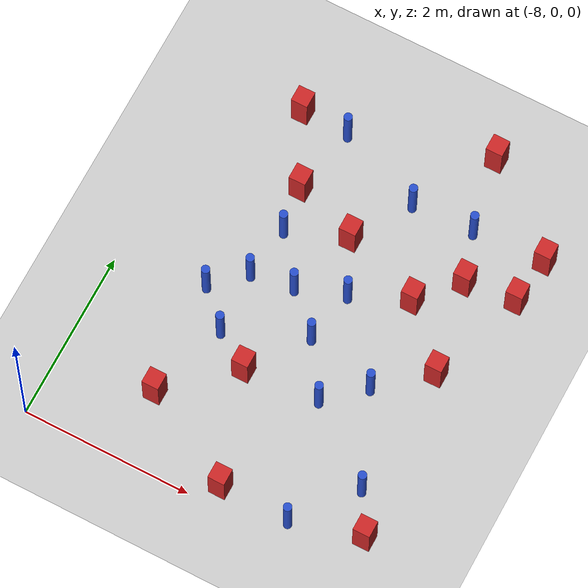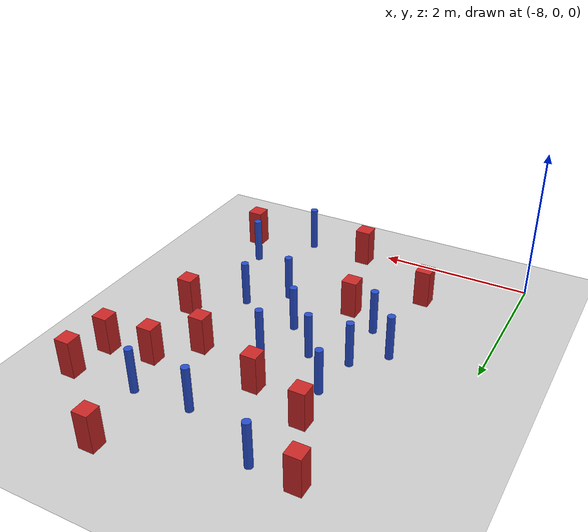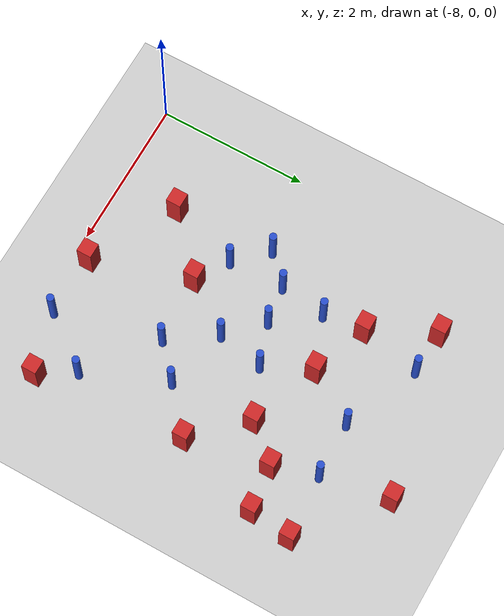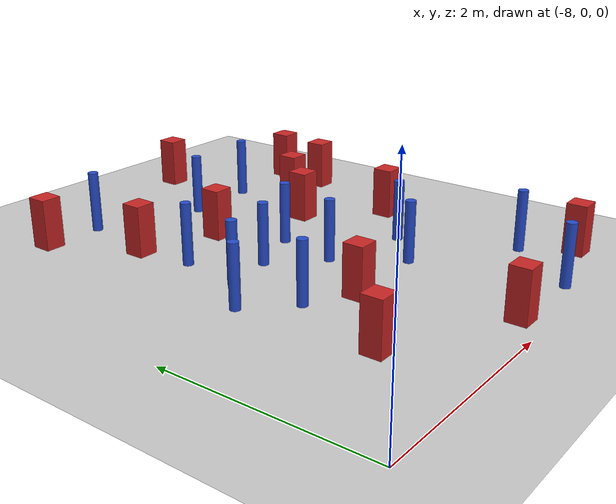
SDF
<sdf version="1.6">
 <world name="default">
  <model name="ground_plane">
   <static>1</static>
   <link name="link">
    <collision name="collision">
     <geometry><plane><normal>0 0 1</normal><size>100 100</size></plane></geometry>
     <surface><friction><ode><mu>100</mu><mu2>50</mu2></ode></friction></surface>
    </collision>
    <visual name="visual">
     <cast_shadows>0</cast_shadows>
     <geometry><plane><normal>0 0 1</normal><size>100 100</size></plane></geometry>
     <material>
      <ambient>1.0 1.0 1.0 1.0</ambient>
      <diffuse>0.8 0.8 0.8 1.0</diffuse>
      <specular>0.01 0.01 0.01 1.000000</specular>
     </material>
    </visual>
   </link>
  </model>
  <model name="square_post_obstacle0">
   <static>true</static>
   <pose>-3.86595991836 3.60557154821 1.91545236811e-07 -7.35059704564e-06 1.12565212e-07 2.39332434364e-05</pose>
   <link name="link">
    <pose>0 0 0.25 0 -0 0</pose>
    <inertial>
     <mass>100</mass>
     <inertia>
      <ixx>0.166667</ixx>
      <ixy>0</ixy>
      <ixz>0</ixz>
      <iyy>0.166667</iyy>
      <iyz>0</iyz>
      <izz>0.166667</izz>
     </inertia>
    </inertial>
    <collision name="collision"><geometry><box><size>.2 .2 .5</size></box></geometry></collision>
    <visual name="visual">
     <geometry><box><size>.2 .2 .5</size></box></geometry>
     <material>
      <script><name>Gazebo/Red</name><uri>file://media/materials/scripts/gazebo.material</uri></script>
     </material>
    </visual>
   </link>
  </model>
  <model name="pole_obstacle21">
   <static>true</static>
   <pose>-6.55348744013 1.78004425009 7.38925637345e-09 -8.471706928e-08 1.24976765134e-08 -1.74513093015e-07</pose>
   <link name="link">
    <pose>0 0 0.3 0 -0 0</pose>
    <inertial>
     <mass>1</mass>
     <inertia><ixx>0.145833</ixx><ixy>0</ixy><ixz>0</ixz><iyy>0.145833</iyy><iyz>0</iyz><izz>0.125</izz></inertia>
    </inertial>
    <collision name="collision">
     <geometry><cylinder><radius>0.05</radius><length>.6</length></cylinder></geometry>
    </collision>
    <visual name="visual">
     <geometry><cylinder><radius>0.05</radius><length>.6</length></cylinder></geometry>
     <material>
      <script><name>Gazebo/Blue</name><uri>file://media/materials/scripts/gazebo.material</uri></script>
     </material>
    </visual>
   </link>
  </model>
  <model name="square_post_obstacle40">
   <static>true</static>
   <pose>-6.85556319978 0.843686910048 1.91545236811e-07 -7.35059704564e-06 1.12565212e-07 2.39332434364e-05</pose>
   <link name="link">
    <pose>0 0 0.25 0 -0 0</pose>
    <inertial>
     <mass>100</mass>
     <inertia>
      <ixx>0.166667</ixx>
      <ixy>0</ixy>
      <ixz>0</ixz>
      <iyy>0.166667</iyy>
      <iyz>0</iyz>
      <izz>0.166667</izz>
     </inertia>
    </inertial>
    <collision name="collision"><geometry><box><size>.2 .2 .5</size></box></geometry></collision>
    <visual name="visual">
     <geometry><box><size>.2 .2 .5</size></box></geometry>
     <material>
      <script><name>Gazebo/Red</name><uri>file://media/materials/scripts/gazebo.material</uri></script>
     </material>
    </visual>
   </link>
  </model>
  <model name="square_post_obstacle45">
   <static>true</static>
   <pose>-5.71500904995 0.223357686886 1.91545236811e-07 -7.35059704564e-06 1.12565212e-07 2.39332434364e-05</pose>
   <link name="link">
    <pose>0 0 0.25 0 -0 0</pose>
    <inertial>
     <mass>100</mass>
     <inertia>
      <ixx>0.166667</ixx>
      <ixy>0</ixy>
      <ixz>0</ixz>
      <iyy>0.166667</iyy>
      <iyz>0</iyz>
      <izz>0.166667</izz>
     </inertia>
    </inertial>
    <collision name="collision"><geometry><box><size>.2 .2 .5</size></box></geometry></collision>
    <visual name="visual">
     <geometry><box><size>.2 .2 .5</size></box></geometry>
     <material>
      <script><name>Gazebo/Red</name><uri>file://media/materials/scripts/gazebo.material</uri></script>
     </material>
    </visual>
   </link>
  </model>
  <model name="pole_obstacle58">
   <static>true</static>
   <pose>-6.50039643059 3.14335249253 7.38925637345e-09 -8.47170692798e-08 1.24976764937e-08 -1.74513093023e-07</pose>
   <link name="link">
    <pose>0 0 0.3 0 -0 0</pose>
    <inertial>
     <mass>1</mass>
     <inertia><ixx>0.145833</ixx><ixy>0</ixy><ixz>0</ixz><iyy>0.145833</iyy><iyz>0</iyz><izz>0.125</izz></inertia>
    </inertial>
    <collision name="collision">
     <geometry><cylinder><radius>0.05</radius><length>.6</length></cylinder></geometry>
    </collision>
    <visual name="visual">
     <geometry><cylinder><radius>0.05</radius><length>.6</length></cylinder></geometry>
     <material>
      <script><name>Gazebo/Blue</name><uri>file://media/materials/scripts/gazebo.material</uri></script>
     </material>
    </visual>
   </link>
  </model>
  <model name="square_post_obstacle71">
   <static>true</static>
   <pose>-4.86969786584 3.07626681974 1.91545236811e-07 -7.35059704564e-06 1.12565212e-07 2.39332434364e-05</pose>
   <link name="link">
    <pose>0 0 0.25 0 -0 0</pose>
    <inertial>
     <mass>100</mass>
     <inertia>
      <ixx>0.166667</ixx>
      <ixy>0</ixy>
      <ixz>0</ixz>
      <iyy>0.166667</iyy>
      <iyz>0</iyz>
      <izz>0.166667</izz>
     </inertia>
    </inertial>
    <collision name="collision"><geometry><box><size>.2 .2 .5</size></box></geometry></collision>
    <visual name="visual">
     <geometry><box><size>.2 .2 .5</size></box></geometry>
     <material>
      <script><name>Gazebo/Red</name><uri>file://media/materials/scripts/gazebo.material</uri></script>
     </material>
    </visual>
   </link>
  </model>
  <model name="pole_obstacle89">
   <static>true</static>
   <pose>-6.07810839489 2.59719397885 7.38925637345e-09 -8.47170692798e-08 1.24976764937e-08 -1.74513093023e-07</pose>
   <link name="link">
    <pose>0 0 0.3 0 -0 0</pose>
    <inertial>
     <mass>1</mass>
     <inertia><ixx>0.145833</ixx><ixy>0</ixy><ixz>0</ixz><iyy>0.145833</iyy><iyz>0</iyz><izz>0.125</izz></inertia>
    </inertial>
    <collision name="collision">
     <geometry><cylinder><radius>0.05</radius><length>.6</length></cylinder></geometry>
    </collision>
    <visual name="visual">
     <geometry><cylinder><radius>0.05</radius><length>.6</length></cylinder></geometry>
     <material>
      <script><name>Gazebo/Blue</name><uri>file://media/materials/scripts/gazebo.material</uri></script>
     </material>
    </visual>
   </link>
  </model>
  <model name="pole_obstacle90">
   <static>true</static>
   <pose>-4.88486015319 0.196753515784 7.38925637345e-09 -8.471706928e-08 1.24976765151e-08 -1.74513093014e-07</pose>
   <link name="link">
    <pose>0 0 0.3 0 -0 0</pose>
    <inertial>
     <mass>1</mass>
     <inertia><ixx>0.145833</ixx><ixy>0</ixy><ixz>0</ixz><iyy>0.145833</iyy><iyz>0</iyz><izz>0.125</izz></inertia>
    </inertial>
    <collision name="collision">
     <geometry><cylinder><radius>0.05</radius><length>.6</length></cylinder></geometry>
    </collision>
    <visual name="visual">
     <geometry><cylinder><radius>0.05</radius><length>.6</length></cylinder></geometry>
     <material>
      <script><name>Gazebo/Blue</name><uri>file://media/materials/scripts/gazebo.material</uri></script>
     </material>
    </visual>
   </link>
  </model>
  <model name="pole_obstacle94">
   <static>true</static>
   <pose>-5.39001507004 4.07851157593 7.38925637345e-09 -8.47170692796e-08 1.24976764786e-08 -1.74513093032e-07</pose>
   <link name="link">
    <pose>0 0 0.3 0 -0 0</pose>
    <inertial>
     <mass>1</mass>
     <inertia><ixx>0.145833</ixx><ixy>0</ixy><ixz>0</ixz><iyy>0.145833</iyy><iyz>0</iyz><izz>0.125</izz></inertia>
    </inertial>
    <collision name="collision">
     <geometry><cylinder><radius>0.05</radius><length>.6</length></cylinder></geometry>
    </collision>
    <visual name="visual">
     <geometry><cylinder><radius>0.05</radius><length>.6</length></cylinder></geometry>
     <material>
      <script><name>Gazebo/Blue</name><uri>file://media/materials/scripts/gazebo.material</uri></script>
     </material>
    </visual>
   </link>
  </model>
  <model name="pole_obstacle107">
   <static>true</static>
   <pose>-4.34851654881 0.886905893965 7.38925637345e-09 -8.47170692799e-08 1.24976765038e-08 -1.74513093018e-07</pose>
   <link name="link">
    <pose>0 0 0.3 0 -0 0</pose>
    <inertial>
     <mass>1</mass>
     <inertia><ixx>0.145833</ixx><ixy>0</ixy><ixz>0</ixz><iyy>0.145833</iyy><iyz>0</iyz><izz>0.125</izz></inertia>
    </inertial>
    <collision name="collision">
     <geometry><cylinder><radius>0.05</radius><length>.6</length></cylinder></geometry>
    </collision>
    <visual name="visual">
     <geometry><cylinder><radius>0.05</radius><length>.6</length></cylinder></geometry>
     <material>
      <script><name>Gazebo/Blue</name><uri>file://media/materials/scripts/gazebo.material</uri></script>
     </material>
    </visual>
   </link>
  </model>
  <model name="pole_obstacle109">
   <static>true</static>
   <pose>-5.23086947961 1.56839969151 7.38925637345e-09 -8.471706928e-08 1.24976765134e-08 -1.74513093015e-07</pose>
   <link name="link">
    <pose>0 0 0.3 0 -0 0</pose>
    <inertial>
     <mass>1</mass>
     <inertia><ixx>0.145833</ixx><ixy>0</ixy><ixz>0</ixz><iyy>0.145833</iyy><iyz>0</iyz><izz>0.125</izz></inertia>
    </inertial>
    <collision name="collision">
     <geometry><cylinder><radius>0.05</radius><length>.6</length></cylinder></geometry>
    </collision>
    <visual name="visual">
     <geometry><cylinder><radius>0.05</radius><length>.6</length></cylinder></geometry>
     <material>
      <script><name>Gazebo/Blue</name><uri>file://media/materials/scripts/gazebo.material</uri></script>
     </material>
    </visual>
   </link>
  </model>
  <model name="pole_obstacle124">
   <static>true</static>
   <pose>-5.64075008194 2.17287120768 7.38925637345e-09 -8.47170692798e-08 1.24976764937e-08 -1.74513093023e-07</pose>
   <link name="link">
    <pose>0 0 0.3 0 -0 0</pose>
    <inertial>
     <mass>1</mass>
     <inertia><ixx>0.145833</ixx><ixy>0</ixy><ixz>0</ixz><iyy>0.145833</iyy><iyz>0</iyz><izz>0.125</izz></inertia>
    </inertial>
    <collision name="collision">
     <geometry><cylinder><radius>0.05</radius><length>.6</length></cylinder></geometry>
    </collision>
    <visual name="visual">
     <geometry><cylinder><radius>0.05</radius><length>.6</length></cylinder></geometry>
     <material>
      <script><name>Gazebo/Blue</name><uri>file://media/materials/scripts/gazebo.material</uri></script>
     </material>
    </visual>
   </link>
  </model>
  <model name="pole_obstacle127">
   <static>true</static>
   <pose>-5.52030269205 2.79116916985 7.38925637345e-09 -8.47170692798e-08 1.24976764937e-08 -1.74513093023e-07</pose>
   <link name="link">
    <pose>0 0 0.3 0 -0 0</pose>
    <inertial>
     <mass>1</mass>
     <inertia><ixx>0.145833</ixx><ixy>0</ixy><ixz>0</ixz><iyy>0.145833</iyy><iyz>0</iyz><izz>0.125</izz></inertia>
    </inertial>
    <collision name="collision">
     <geometry><cylinder><radius>0.05</radius><length>.6</length></cylinder></geometry>
    </collision>
    <visual name="visual">
     <geometry><cylinder><radius>0.05</radius><length>.6</length></cylinder></geometry>
     <material>
      <script><name>Gazebo/Blue</name><uri>file://media/materials/scripts/gazebo.material</uri></script>
     </material>
    </visual>
   </link>
  </model>
  <model name="square_post_obstacle118">
   <static>true</static>
   <pose>-4.82078689809 5.00561105637 1.91545236811e-07 -7.35059704564e-06 1.12565212e-07 2.39332434364e-05</pose>
   <link name="link">
    <pose>0 0 0.25 0 -0 0</pose>
    <inertial>
     <mass>100</mass>
     <inertia>
      <ixx>0.166667</ixx>
      <ixy>0</ixy>
      <ixz>0</ixz>
      <iyy>0.166667</iyy>
      <iyz>0</iyz>
      <izz>0.166667</izz>
     </inertia>
    </inertial>
    <collision name="collision"><geometry><box><size>.2 .2 .5</size></box></geometry></collision>
    <visual name="visual">
     <geometry><box><size>.2 .2 .5</size></box></geometry>
     <material>
      <script><name>Gazebo/Red</name><uri>file://media/materials/scripts/gazebo.material</uri></script>
     </material>
    </visual>
   </link>
  </model>
  <model name="square_post_obstacle119">
   <static>true</static>
   <pose>-3.80180215612 4.16481056923 1.91545236811e-07 -7.35059704564e-06 1.12565212e-07 2.39332434364e-05</pose>
   <link name="link">
    <pose>0 0 0.25 0 -0 0</pose>
    <inertial>
     <mass>100</mass>
     <inertia>
      <ixx>0.166667</ixx>
      <ixy>0</ixy>
      <ixz>0</ixz>
      <iyy>0.166667</iyy>
      <iyz>0</iyz>
      <izz>0.166667</izz>
     </inertia>
    </inertial>
    <collision name="collision"><geometry><box><size>.2 .2 .5</size></box></geometry></collision>
    <visual name="visual">
     <geometry><box><size>.2 .2 .5</size></box></geometry>
     <material>
      <script><name>Gazebo/Red</name><uri>file://media/materials/scripts/gazebo.material</uri></script>
     </material>
    </visual>
   </link>
  </model>
  <model name="square_post_obstacle120">
   <static>true</static>
   <pose>-4.46540278607 3.53071237787 1.91545236811e-07 -7.35059704564e-06 1.12565212e-07 2.39332434364e-05</pose>
   <link name="link">
    <pose>0 0 0.25 0 -0 0</pose>
    <inertial>
     <mass>100</mass>
     <inertia>
      <ixx>0.166667</ixx>
      <ixy>0</ixy>
      <ixz>0</ixz>
      <iyy>0.166667</iyy>
      <iyz>0</iyz>
      <izz>0.166667</izz>
     </inertia>
    </inertial>
    <collision name="collision"><geometry><box><size>.2 .2 .5</size></box></geometry></collision>
    <visual name="visual">
     <geometry><box><size>.2 .2 .5</size></box></geometry>
     <material>
      <script><name>Gazebo/Red</name><uri>file://media/materials/scripts/gazebo.material</uri></script>
     </material>
    </visual>
   </link>
  </model>
  <model name="pole_obstacle146">
   <static>true</static>
   <pose>-4.80376832508 1.95586070441 7.38925637345e-09 -8.471706928e-08 1.24976765177e-08 -1.74513093012e-07</pose>
   <link name="link">
    <pose>0 0 0.3 0 -0 0</pose>
    <inertial>
     <mass>1</mass>
     <inertia><ixx>0.145833</ixx><ixy>0</ixy><ixz>0</ixz><iyy>0.145833</iyy><iyz>0</iyz><izz>0.125</izz></inertia>
    </inertial>
    <collision name="collision">
     <geometry><cylinder><radius>0.05</radius><length>.6</length></cylinder></geometry>
    </collision>
    <visual name="visual">
     <geometry><cylinder><radius>0.05</radius><length>.6</length></cylinder></geometry>
     <material>
      <script><name>Gazebo/Blue</name><uri>file://media/materials/scripts/gazebo.material</uri></script>
     </material>
    </visual>
   </link>
  </model>
  <model name="pole_obstacle156">
   <static>true</static>
   <pose>-6.41359265644 4.494106197 7.38925637345e-09 -8.47170692796e-08 1.24976764786e-08 -1.74513093032e-07</pose>
   <link name="link">
    <pose>0 0 0.3 0 -0 0</pose>
    <inertial>
     <mass>1</mass>
     <inertia><ixx>0.145833</ixx><ixy>0</ixy><ixz>0</ixz><iyy>0.145833</iyy><iyz>0</iyz><izz>0.125</izz></inertia>
    </inertial>
    <collision name="collision">
     <geometry><cylinder><radius>0.05</radius><length>.6</length></cylinder></geometry>
    </collision>
    <visual name="visual">
     <geometry><cylinder><radius>0.05</radius><length>.6</length></cylinder></geometry>
     <material>
      <script><name>Gazebo/Blue</name><uri>file://media/materials/scripts/gazebo.material</uri></script>
     </material>
    </visual>
   </link>
  </model>
  <model name="square_post_obstacle156">
   <static>true</static>
   <pose>-6.12395830026 1.5156468879 1.91545236811e-07 -7.35059704564e-06 1.12565212e-07 2.39332434364e-05</pose>
   <link name="link">
    <pose>0 0 0.25 0 -0 0</pose>
    <inertial>
     <mass>100</mass>
     <inertia>
      <ixx>0.166667</ixx>
      <ixy>0</ixy>
      <ixz>0</ixz>
      <iyy>0.166667</iyy>
      <iyz>0</iyz>
      <izz>0.166667</izz>
     </inertia>
    </inertial>
    <collision name="collision"><geometry><box><size>.2 .2 .5</size></box></geometry></collision>
    <visual name="visual">
     <geometry><box><size>.2 .2 .5</size></box></geometry>
     <material>
      <script><name>Gazebo/Red</name><uri>file://media/materials/scripts/gazebo.material</uri></script>
     </material>
    </visual>
   </link>
  </model>
  <model name="square_post_obstacle157">
   <static>true</static>
   <pose>-6.57234840411 3.68802549817 1.91545236811e-07 -7.35059704564e-06 1.12565212e-07 2.39332434364e-05</pose>
   <link name="link">
    <pose>0 0 0.25 0 -0 0</pose>
    <inertial>
     <mass>100</mass>
     <inertia>
      <ixx>0.166667</ixx>
      <ixy>0</ixy>
      <ixz>0</ixz>
      <iyy>0.166667</iyy>
      <iyz>0</iyz>
      <izz>0.166667</izz>
     </inertia>
    </inertial>
    <collision name="collision"><geometry><box><size>.2 .2 .5</size></box></geometry></collision>
    <visual name="visual">
     <geometry><box><size>.2 .2 .5</size></box></geometry>
     <material>
      <script><name>Gazebo/Red</name><uri>file://media/materials/scripts/gazebo.material</uri></script>
     </material>
    </visual>
   </link>
  </model>
  <model name="square_post_obstacle159">
   <static>true</static>
   <pose>-4.07350914103 0.431229910862 1.91545236811e-07 -7.35059704564e-06 1.12565212e-07 2.39332434364e-05</pose>
   <link name="link">
    <pose>0 0 0.25 0 -0 0</pose>
    <inertial>
     <mass>100</mass>
     <inertia>
      <ixx>0.166667</ixx>
      <ixy>0</ixy>
      <ixz>0</ixz>
      <iyy>0.166667</iyy>
      <iyz>0</iyz>
      <izz>0.166667</izz>
     </inertia>
    </inertial>
    <collision name="collision"><geometry><box><size>.2 .2 .5</size></box></geometry></collision>
    <visual name="visual">
     <geometry><box><size>.2 .2 .5</size></box></geometry>
     <material>
      <script><name>Gazebo/Red</name><uri>file://media/materials/scripts/gazebo.material</uri></script>
     </material>
    </visual>
   </link>
  </model>
  <model name="square_post_obstacle164">
   <static>true</static>
   <pose>-6.98697210703 4.5192453092 1.91545236811e-07 -7.35059704564e-06 1.12565212e-07 2.39332434364e-05</pose>
   <link name="link">
    <pose>0 0 0.25 0 -0 0</pose>
    <inertial>
     <mass>100</mass>
     <inertia>
      <ixx>0.166667</ixx>
      <ixy>0</ixy>
      <ixz>0</ixz>
      <iyy>0.166667</iyy>
      <iyz>0</iyz>
      <izz>0.166667</izz>
     </inertia>
    </inertial>
    <collision name="collision"><geometry><box><size>.2 .2 .5</size></box></geometry></collision>
    <visual name="visual">
     <geometry><box><size>.2 .2 .5</size></box></geometry>
     <material>
      <script><name>Gazebo/Red</name><uri>file://media/materials/scripts/gazebo.material</uri></script>
     </material>
    </visual>
   </link>
  </model>
  <model name="square_post_obstacle193">
   <static>true</static>
   <pose>-5.80840645989 3.41423138902 1.91545236811e-07 -7.35059704564e-06 1.12565212e-07 2.39332434364e-05</pose>
   <link name="link">
    <pose>0 0 0.25 0 -0 0</pose>
    <inertial>
     <mass>100</mass>
     <inertia>
      <ixx>0.166667</ixx>
      <ixy>0</ixy>
      <ixz>0</ixz>
      <iyy>0.166667</iyy>
      <iyz>0</iyz>
      <izz>0.166667</izz>
     </inertia>
    </inertial>
    <collision name="collision"><geometry><box><size>.2 .2 .5</size></box></geometry></collision>
    <visual name="visual">
     <geometry><box><size>.2 .2 .5</size></box></geometry>
     <material>
      <script><name>Gazebo/Red</name><uri>file://media/materials/scripts/gazebo.material</uri></script>
     </material>
    </visual>
   </link>
  </model>
  <model name="square_post_obstacle198">
   <static>true</static>
   <pose>-4.25337391084 2.44499710554 1.91545236811e-07 -7.35059704564e-06 1.12565212e-07 2.39332434364e-05</pose>
   <link name="link">
    <pose>0 0 0.25 0 -0 0</pose>
    <inertial>
     <mass>100</mass>
     <inertia>
      <ixx>0.166667</ixx>
      <ixy>0</ixy>
      <ixz>0</ixz>
      <iyy>0.166667</iyy>
      <iyz>0</iyz>
      <izz>0.166667</izz>
     </inertia>
    </inertial>
    <collision name="collision"><geometry><box><size>.2 .2 .5</size></box></geometry></collision>
    <visual name="visual">
     <geometry><box><size>.2 .2 .5</size></box></geometry>
     <material>
      <script><name>Gazebo/Red</name><uri>file://media/materials/scripts/gazebo.material</uri></script>
     </material>
    </visual>
   </link>
  </model>
  <model name="pole_obstacle192">
   <static>true</static>
   <pose>-4.65066480137 4.10591743107 7.38925637345e-09 -8.47170692796e-08 1.24976764786e-08 -1.74513093032e-07</pose>
   <link name="link">
    <pose>0 0 0.3 0 -0 0</pose>
    <inertial>
     <mass>1</mass>
     <inertia><ixx>0.145833</ixx><ixy>0</ixy><ixz>0</ixz><iyy>0.145833</iyy><iyz>0</iyz><izz>0.125</izz></inertia>
    </inertial>
    <collision name="collision">
     <geometry><cylinder><radius>0.05</radius><length>.6</length></cylinder></geometry>
    </collision>
    <visual name="visual">
     <geometry><cylinder><radius>0.05</radius><length>.6</length></cylinder></geometry>
     <material>
      <script><name>Gazebo/Blue</name><uri>file://media/materials/scripts/gazebo.material</uri></script>
     </material>
    </visual>
   </link>
  </model>
  <model name="pole_obstacle205">
   <static>true</static>
   <pose>-6.58068999043 2.52291002078 7.38925637345e-09 -8.47170692799e-08 1.24976765028e-08 -1.74513093019e-07</pose>
   <link name="link">
    <pose>0 0 0.3 0 -0 0</pose>
    <inertial>
     <mass>1</mass>
     <inertia><ixx>0.145833</ixx><ixy>0</ixy><ixz>0</ixz><iyy>0.145833</iyy><iyz>0</iyz><izz>0.125</izz></inertia>
    </inertial>
    <collision name="collision">
     <geometry><cylinder><radius>0.05</radius><length>.6</length></cylinder></geometry>
    </collision>
    <visual name="visual">
     <geometry><cylinder><radius>0.05</radius><length>.6</length></cylinder></geometry>
     <material>
      <script><name>Gazebo/Blue</name><uri>file://media/materials/scripts/gazebo.material</uri></script>
     </material>
    </visual>
   </link>
  </model>
  <model name="pole_obstacle218">
   <static>true</static>
   <pose>-6.94393999043 2.17647002078 7.38925637345e-09 -8.47170692798e-08 1.24976764937e-08 -1.74513093023e-07</pose>
   <link name="link">
    <pose>0 0 0.3 0 -0 0</pose>
    <inertial>
     <mass>1</mass>
     <inertia><ixx>0.145833</ixx><ixy>0</ixy><ixz>0</ixz><iyy>0.145833</iyy><iyz>0</iyz><izz>0.125</izz></inertia>
    </inertial>
    <collision name="collision">
     <geometry><cylinder><radius>0.05</radius><length>.6</length></cylinder></geometry>
    </collision>
    <visual name="visual">
     <geometry><cylinder><radius>0.05</radius><length>.6</length></cylinder></geometry>
     <material>
      <script><name>Gazebo/Blue</name><uri>file://media/materials/scripts/gazebo.material</uri></script>
     </material>
    </visual>
   </link>
  </model>
 </world>
</sdf>
